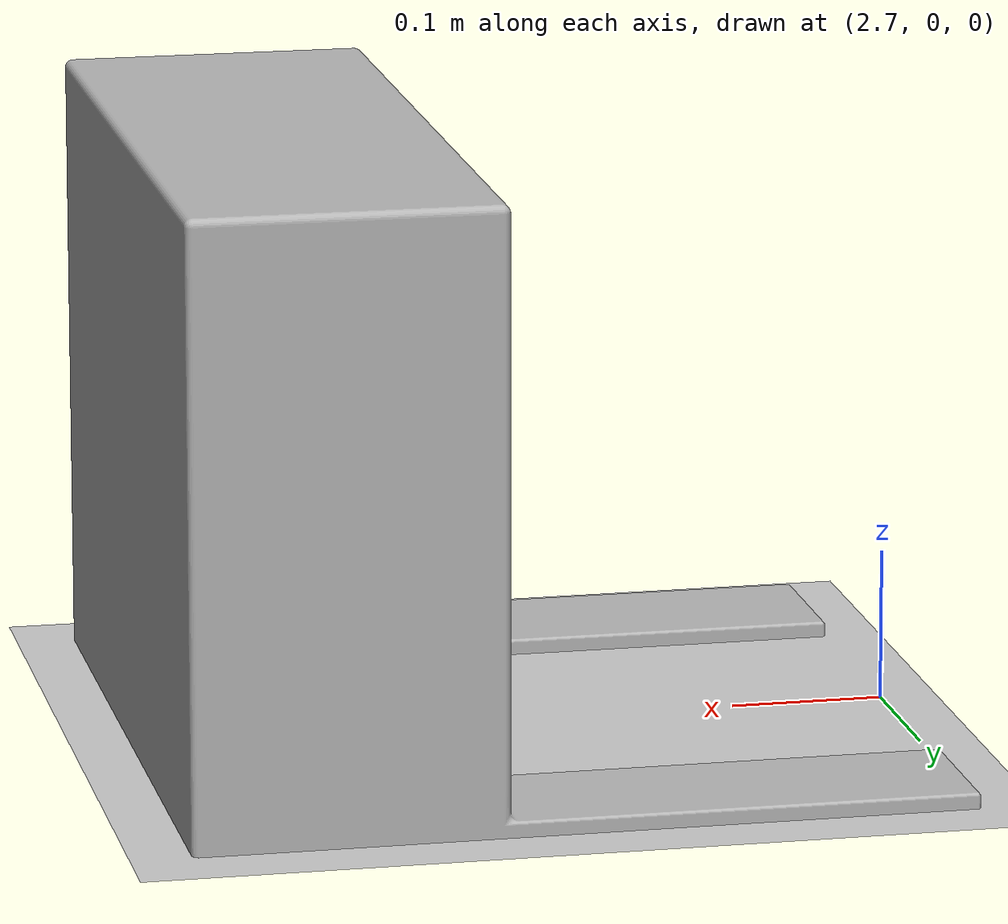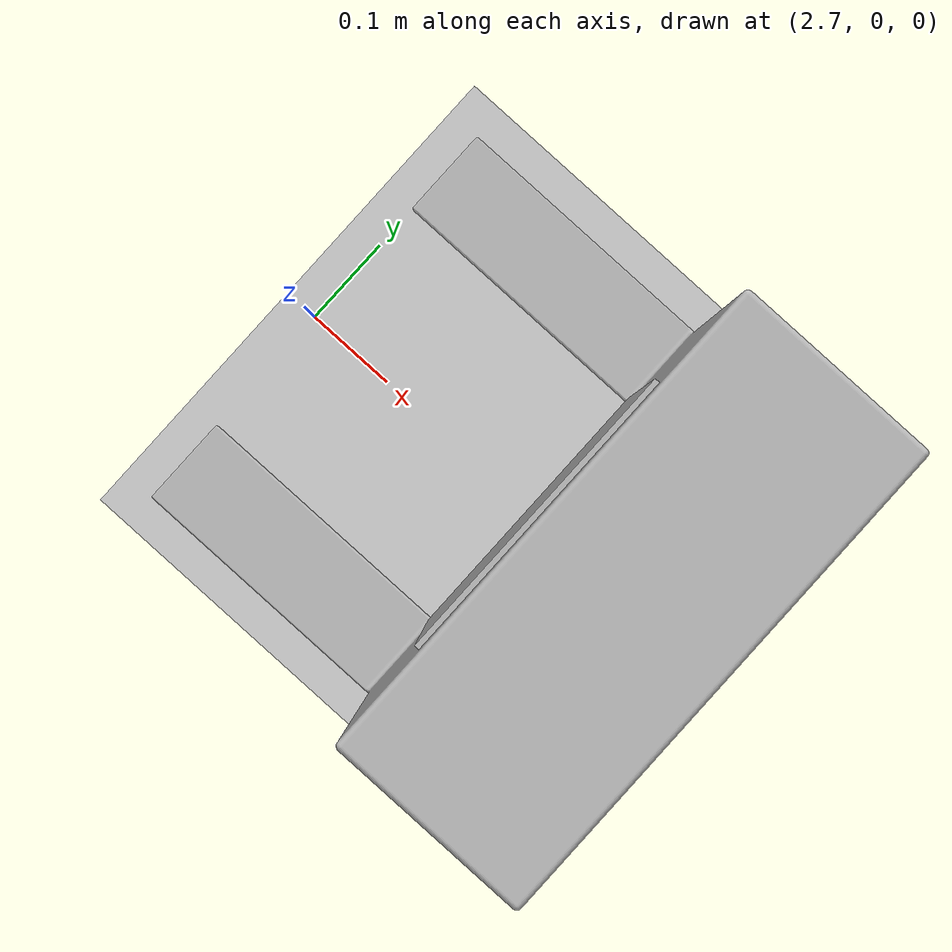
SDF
<?xml version="1.0"?>

<sdf version="1.5">
	<world name="default">
		<!-- A global light source -->
		<include>
			<uri>model://sun</uri>
		</include>

		<!-- A ground plane -->
		<include>
			<uri>model://ground_plane</uri>
		</include>

        <!-- Dock -->
		<include>
			<uri>model://dock</uri>
			<pose>3 0.25 0  0 0 -1.570796</pose>
		</include>

		<!-- AprilTag 36h11 00408 -->
		<include>
			<uri>model://tag36_11_00408</uri>
			<pose>3 0 0.2  0 -1.570796 0 </pose>
		</include>

		<!-- Turtlebot -->

	</world>
</sdf>

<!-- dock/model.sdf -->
<sdf version="1.5">
  <model name="dock">
    <static>false</static>
    <link name="link">

      <inertial>
        <mass>20.0</mass>
        <inertia>
          <ixx>0.00</ixx>
          <ixy>0.0</ixy>
          <ixz>0.0</ixz>
          <iyy>0.00</iyy>
          <iyz>0.0</iyz>
          <izz>0.00</izz>
        </inertia>
      </inertial>

      <collision name="collision">
        <geometry>
          <mesh>
            <uri>model://dock/mesh/dock.dae</uri>
            <scale>0.001 0.001 0.001</scale>
          </mesh>
        </geometry>
      </collision>

      <visual name="visual">
        <geometry>
          <mesh>
            <uri>model://dock/mesh/dock.dae</uri>
            <scale>0.001 0.001 0.001</scale>
          </mesh>
        </geometry>
      </visual>

    </link>
  </model>
</sdf>

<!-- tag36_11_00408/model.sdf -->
<sdf version='1.5'>
  <model name='tag36_11_00408'>
    <link name='main'>
    <pose frame=''>0 0 0 0 0 0</pose>
      <visual name='main_Visual'>
        <geometry>
          <box>
            <size>0.3 0.3 0.01</size>
          </box>
        </geometry>
        <material>
          <script>
            <uri>model://tag36_11_00408/materials/scripts</uri>
            <uri>model://tag36_11_00408/materials/textures/tag.png</uri>
            <name>tag36_11_00408</name>
          </script>
        </material>
      </visual>
     </link>
    <static>1</static>
  </model>
</sdf>
